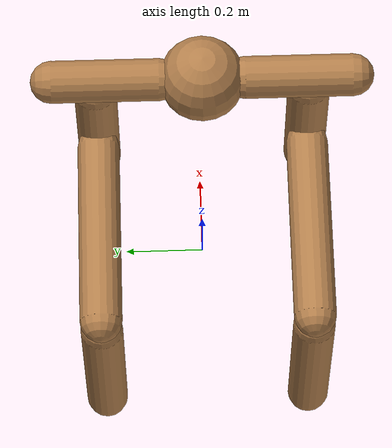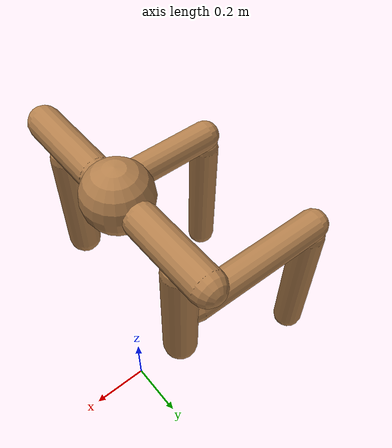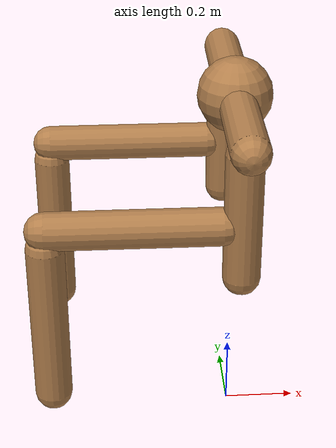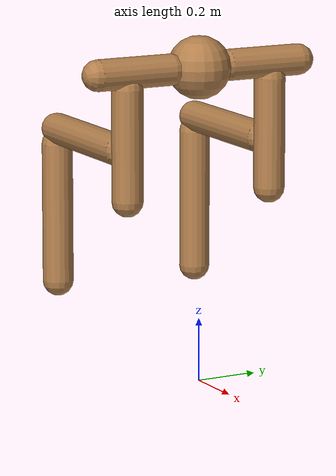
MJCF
<?xml version='1.0' encoding='UTF-8'?>
<!-- Universal Animal Template: unimal -->
<mujoco model="unimal">
  <compiler angle="degree"/>
  <size njmax="2000" nconmax="500"/>
  <option timestep=".005">
    <flag filterparent="disable"/>
  </option>
  <!-- Common defaults to make search space tractable -->
  <default>
    <!-- Define motor defaults -->
    <motor ctrlrange="-1 1" ctrllimited="true"/>
    <!-- Define joint defaults -->
    <default class="normal_joint">
      <joint type="hinge" damping="1" stiffness="1" armature="1" limited="true" range="-120 120" solimplimit="0 0.99 0.01"/>
    </default>
    <default class="walker_joint">
      <joint type="hinge" damping="0.2" stiffness="1" armature=".01" limited="true" range="-120 120" solimplimit="0 0.99 0.01"/>
    </default>
    <default class="stiff_joint">
      <joint type="hinge" damping="5" stiffness="10" armature=".01" limited="true" solimplimit="0 0.99 0.01"/>
    </default>
    <default class="free">
      <joint limited="false" damping="0" armature="0" stiffness="0"/>
    </default>
    <default class="growth_site">
      <site size="1e-6 1e-6 1e-6"/>
    </default>
    <default class="torso_growth_site">
      <site size="1e-6 1e-6 1e-6"/>
    </default>
    <default class="mirror_growth_site">
      <site size="1e-6 1e-6 1e-6"/>
    </default>
    <default class="btm_pos_site">
      <site size="1e-6 1e-6 1e-6"/>
    </default>
    <default class="box_face_site">
      <site size="1e-6 1e-6 1e-6"/>
    </default>
    <default class="imu_vel">
      <site type="box" size="0.05" rgba="1 0 0 0"/>
    </default>
    <default class="touch_site">
      <site group="3" rgba="0 0 1 .3"/>
    </default>
    <default class="food_site">
      <site material="food" size="0.15"/>
    </default>
    <!-- Define geom defaults -->
    <geom type="capsule" condim="3" friction="0.7 0.1 0.1" material="self"/>
  </default>
  <worldbody>
    <light diffuse="1 1 1" directional="true" exponent="1" pos="0 0 8" specular="0.1 0.1 0.1" dir="0 0 -1"/>
    <!-- Programatically generated xml goes here -->
    <body name="torso/0" pos="0 0 1.0">
      <joint name="root" type="free" class="free"/>
      <site name="root" class="imu_vel"/>
      <geom name="torso/0" type="sphere" size="0.1" condim="3" density="500"/>
      <camera name="side" pos="0 -7 2" xyaxes="1 0 0 0 1 2" mode="trackcom"/>
      <site name="torso/0" class="growth_site" pos="0 0 0"/>
      <site name="torso/btm_pos/0" class="btm_pos_site" pos="0 0 -0.1"/>
      <site name="torso/touch/0" class="touch_site" size="0.11"/>
      <site name="torso/horizontal_y/0" class="torso_growth_site" pos="-0.1 0 0"/>
      <body name="limb/0" pos="0.0 0.1 0.0">
        <joint name="limbx/0" type="hinge" class="normal_joint" range="-30 60" pos="0.0 -0.05 0.0" axis="1.0 0.0 0.0"/>
        <joint name="limby/0" type="hinge" class="normal_joint" range="-30 30" pos="0.0 -0.05 0.0" axis="0.0 0.0 1.0"/>
        <geom name="limb/0" type="capsule" fromto="0.0 0.0 0.0 0.0 0.25 0.0" size="0.05" density="500"/>
        <site name="limb/mid/0" class="mirror_growth_site" pos="0.0 0.15 0.0"/>
        <site name="limb/btm/0" class="mirror_growth_site" pos="0.0 0.25 0.0"/>
        <site name="limb/btm_pos/0" class="btm_pos_site" pos="0.0 0.25 0.0"/>
        <site name="limb/touch/0" class="touch_site" size="0.060000000000000005" fromto="0.0 0.0 0.0 0.0 0.25 0.0" type="capsule"/>
        <body name="limb/36" pos="0.0 0.15 -0.05">
          <joint name="limbx/36" type="hinge" class="normal_joint" range="0 30" pos="0.0 0.0 0.05" axis="1.0 0.0 0.0"/>
          <joint name="limby/36" type="hinge" class="normal_joint" range="-60 60" pos="0.0 0.0 0.05" axis="0.0 1.0 0.0"/>
          <geom name="limb/36" type="capsule" fromto="0.0 0.0 0.0 0.0 0.0 -0.35" size="0.05" density="500"/>
          <site name="limb/mid/36" class="mirror_growth_site" pos="0.0 0.0 -0.2"/>
          <site name="limb/btm/36" class="mirror_growth_site" pos="0.0 0.0 -0.35"/>
          <site name="limb/btm_pos/36" class="btm_pos_site" pos="0.0 0.0 -0.4"/>
          <site name="limb/touch/36" class="touch_site" size="0.060000000000000005" fromto="0.0 0.0 0.0 0.0 0.0 -0.35" type="capsule"/>
          <body name="limb/38" pos="-0.05 0.0 -0.2">
            <joint name="limby/38" type="hinge" class="normal_joint" range="-60 30" pos="0.05 0.0 0.0" axis="0.0 1.0 0.0"/>
            <geom name="limb/38" type="capsule" fromto="0.0 0.0 0.0 -0.45 0.0 0.0" size="0.05" density="500"/>
            <site name="limb/mid/38" class="mirror_growth_site" pos="-0.25 0.0 0.0"/>
            <site name="limb/btm/38" class="mirror_growth_site" pos="-0.45 0.0 0.0"/>
            <site name="limb/btm_pos/38" class="btm_pos_site" pos="-0.5 0.0 0.0"/>
            <site name="limb/touch/38" class="touch_site" size="0.060000000000000005" fromto="0.0 0.0 0.0 -0.45 0.0 0.0" type="capsule"/>
            <body name="limb/40" pos="-0.45 0.0 -0.05">
              <joint name="limbx/40" type="hinge" class="normal_joint" range="-90 0" pos="0.0 0.0 0.05" axis="1.0 0.0 0.0"/>
              <joint name="limby/40" type="hinge" class="normal_joint" range="-30 0" pos="0.0 0.0 0.05" axis="0.0 1.0 0.0"/>
              <geom name="limb/40" type="capsule" fromto="0.0 0.0 0.0 0.0 0.0 -0.45" size="0.05" density="500"/>
              <site name="limb/mid/40" class="mirror_growth_site" pos="0.0 0.0 -0.25"/>
              <site name="limb/btm/40" class="mirror_growth_site" pos="0.0 0.0 -0.45"/>
              <site name="limb/btm_pos/40" class="btm_pos_site" pos="0.0 0.0 -0.5"/>
              <site name="limb/touch/40" class="touch_site" size="0.060000000000000005" fromto="0.0 0.0 0.0 0.0 0.0 -0.45" type="capsule"/>
            </body>
          </body>
        </body>
      </body>
      <body name="limb/1" pos="0.0 -0.1 0.0">
        <joint name="limbx/1" type="hinge" class="normal_joint" range="-30 60" pos="0.0 0.05 0.0" axis="1.0 0.0 -0.0"/>
        <joint name="limby/1" type="hinge" class="normal_joint" range="-30 30" pos="0.0 0.05 0.0" axis="-0.0 0.0 -1.0"/>
        <geom name="limb/1" type="capsule" fromto="0.0 0.0 0.0 0.0 -0.25 0.0" size="0.05" density="500"/>
        <site name="limb/mid/1" class="mirror_growth_site" pos="0.0 -0.15 0.0"/>
        <site name="limb/btm/1" class="mirror_growth_site" pos="0.0 -0.25 0.0"/>
        <site name="limb/btm_pos/1" class="btm_pos_site" pos="0.0 -0.25 0.0"/>
        <site name="limb/touch/1" class="touch_site" size="0.060000000000000005" fromto="0.0 0.0 0.0 0.0 -0.25 0.0" type="capsule"/>
        <body name="limb/37" pos="0.0 -0.15 -0.05">
          <joint name="limbx/37" type="hinge" class="normal_joint" range="0 30" pos="0.0 0.0 0.05" axis="1.0 0.0 0.0"/>
          <joint name="limby/37" type="hinge" class="normal_joint" range="-60 60" pos="0.0 0.0 0.05" axis="0.0 1.0 0.0"/>
          <geom name="limb/37" type="capsule" fromto="0.0 0.0 0.0 0.0 0.0 -0.35" size="0.05" density="500"/>
          <site name="limb/mid/37" class="mirror_growth_site" pos="0.0 0.0 -0.2"/>
          <site name="limb/btm/37" class="mirror_growth_site" pos="0.0 0.0 -0.35"/>
          <site name="limb/btm_pos/37" class="btm_pos_site" pos="0.0 0.0 -0.4"/>
          <site name="limb/touch/37" class="touch_site" size="0.060000000000000005" fromto="0.0 0.0 0.0 0.0 0.0 -0.35" type="capsule"/>
          <body name="limb/39" pos="-0.05 0.0 -0.2">
            <joint name="limby/39" type="hinge" class="normal_joint" range="-60 30" pos="0.05 0.0 0.0" axis="0.0 1.0 0.0"/>
            <geom name="limb/39" type="capsule" fromto="0.0 0.0 0.0 -0.45 0.0 0.0" size="0.05" density="500"/>
            <site name="limb/mid/39" class="mirror_growth_site" pos="-0.25 0.0 0.0"/>
            <site name="limb/btm/39" class="mirror_growth_site" pos="-0.45 0.0 0.0"/>
            <site name="limb/btm_pos/39" class="btm_pos_site" pos="-0.5 0.0 0.0"/>
            <site name="limb/touch/39" class="touch_site" size="0.060000000000000005" fromto="0.0 0.0 0.0 -0.45 0.0 0.0" type="capsule"/>
            <body name="limb/41" pos="-0.45 0.0 -0.05">
              <joint name="limbx/41" type="hinge" class="normal_joint" range="-90 0" pos="0.0 0.0 0.05" axis="1.0 0.0 0.0"/>
              <joint name="limby/41" type="hinge" class="normal_joint" range="-30 0" pos="0.0 0.0 0.05" axis="0.0 1.0 0.0"/>
              <geom name="limb/41" type="capsule" fromto="0.0 0.0 0.0 0.0 0.0 -0.45" size="0.05" density="500"/>
              <site name="limb/mid/41" class="mirror_growth_site" pos="0.0 0.0 -0.25"/>
              <site name="limb/btm/41" class="mirror_growth_site" pos="0.0 0.0 -0.45"/>
              <site name="limb/btm_pos/41" class="btm_pos_site" pos="0.0 0.0 -0.5"/>
              <site name="limb/touch/41" class="touch_site" size="0.060000000000000005" fromto="0.0 0.0 0.0 0.0 0.0 -0.45" type="capsule"/>
            </body>
          </body>
        </body>
      </body>
    </body>
  </worldbody>
  <actuator>
    <motor joint="limbx/0" gear="200" name="limbx/0"/>
    <motor joint="limby/0" gear="300" name="limby/0"/>
    <motor joint="limbx/36" gear="300" name="limbx/36"/>
    <motor joint="limby/36" gear="300" name="limby/36"/>
    <motor joint="limby/38" gear="250" name="limby/38"/>
    <motor joint="limbx/40" gear="200" name="limbx/40"/>
    <motor joint="limby/40" gear="300" name="limby/40"/>
    <motor joint="limbx/1" gear="200" name="limbx/1"/>
    <motor joint="limby/1" gear="300" name="limby/1"/>
    <motor joint="limbx/37" gear="300" name="limbx/37"/>
    <motor joint="limby/37" gear="300" name="limby/37"/>
    <motor joint="limby/39" gear="250" name="limby/39"/>
    <motor joint="limbx/41" gear="200" name="limbx/41"/>
    <motor joint="limby/41" gear="300" name="limby/41"/>
  </actuator>
  <sensor>
    <accelerometer name="torso_accel" site="root"/>
    <gyro name="torso_gyro" site="root"/>
    <velocimeter name="torso_vel" site="root"/>
    <subtreeangmom name="unimal_am" body="torso/0"/>
    <touch name="torso/0" site="torso/touch/0"/>
    <touch name="limb/0" site="limb/touch/0"/>
    <touch name="limb/36" site="limb/touch/36"/>
    <touch name="limb/38" site="limb/touch/38"/>
    <touch name="limb/40" site="limb/touch/40"/>
    <touch name="limb/1" site="limb/touch/1"/>
    <touch name="limb/37" site="limb/touch/37"/>
    <touch name="limb/39" site="limb/touch/39"/>
    <touch name="limb/41" site="limb/touch/41"/>
  </sensor>
  <!-- Add hfield assets -->
  <asset/>
  <!-- List of contacts to exclude -->
  <contact/>
  <!-- Define material, texture etc -->
  <asset>
    <material name="grid" texture="grid" texrepeat="1 1" texuniform="true" reflectance="0.1"/>
    <material name="hfield" texture="hfield" texrepeat="1 1" texuniform="true" reflectance="0.1"/>
    <material name="wall" texture="wall" texrepeat="1 1" texuniform="true" reflectance=".5"/>
    <material name="platform" texture="platform" texrepeat="1 1" texuniform="true" reflectance=".5"/>
    <material name="boundary" texture="boundary" texrepeat="1 1" texuniform="true" reflectance=".5"/>
    <material name="jump" texture="jump" texrepeat="1 1" texuniform="true" reflectance=".5"/>
    <material name="goal" rgba="1 0 0 1"/>
    <material name="food" rgba="0 0 1 1" emission="1"/>
    <material name="init_position" rgba="0 1 0 0.7"/>
    <material name="self" rgba=".7 .5 .3 1"/>
    <material name="self_invisible" rgba=".7 .5 .3 0"/>
    <material name="self_default" rgba=".7 .5 .3 1"/>
    <material name="self_highlight" rgba="0 .5 .3 1"/>
    <material name="effector" rgba=".7 .4 .2 1"/>
    <material name="effector_default" rgba=".7 .4 .2 1"/>
    <material name="effector_highlight" rgba="0 .5 .3 1"/>
    <material name="decoration" rgba=".3 .5 .7 1"/>
    <material name="eye" rgba="0 .2 1 1"/>
    <material name="target" rgba=".6 .3 .3 1"/>
    <material name="target_default" rgba=".6 .3 .3 1"/>
    <material name="target_highlight" rgba=".6 .3 .3 .4"/>
    <material name="site" rgba=".5 .5 .5 .3"/>
    <material name="ball" texture="ball"/>
  </asset>
  <asset>
    <texture name="grid" type="2d" builtin="checker" rgb1="0.4 0.4 0.4" rgb2="0.4 0.4 0.4" width="300" height="300" mark="edge" markrgb="0.2 0.2 0.2"/>
    <texture name="hfield" type="2d" builtin="checker" rgb1="0.4 0.4 0.4" rgb2="0.4 0.4 0.4" width="300" height="300" mark="edge" markrgb="0.2 0.2 0.2"/>
    <texture name="wall" type="2d" builtin="flat" rgb1="0.9 0.7 0" rgb2="0.9 0.7 0" width="300" height="300"/>
    <texture name="platform" type="2d" builtin="flat" rgb1="0.3 0 0.8" rgb2="0.3 0 0.8" width="300" height="300"/>
    <texture name="boundary" type="2d" builtin="flat" rgb1="0.3 0.3 0.3" rgb2="0.3 0.3 0.3" width="300" height="300"/>
    <texture name="jump" type="2d" builtin="flat" rgb1="0.3 0.3 0.3" rgb2="0.3 0.3 0.3" width="300" height="300"/>
    <texture name="skybox" type="skybox" builtin="gradient" rgb1="1 1 1" rgb2="0.6 0.6 0.6" width="800" height="800"/>
    <texture name="ball" builtin="checker" mark="cross" width="151" height="151" rgb1="0.1 0.1 0.1" rgb2="0.9 0.9 0.9" markrgb="1 1 1"/>
  </asset>
  <visual>
    <headlight ambient="0.6 0.6 0.6" diffuse="0.3 0.3 0.3" specular="0 0 0"/>
    <map znear=".01" shadowclip="0.5"/>
    <quality shadowsize="16384"/>
  </visual>
</mujoco>
